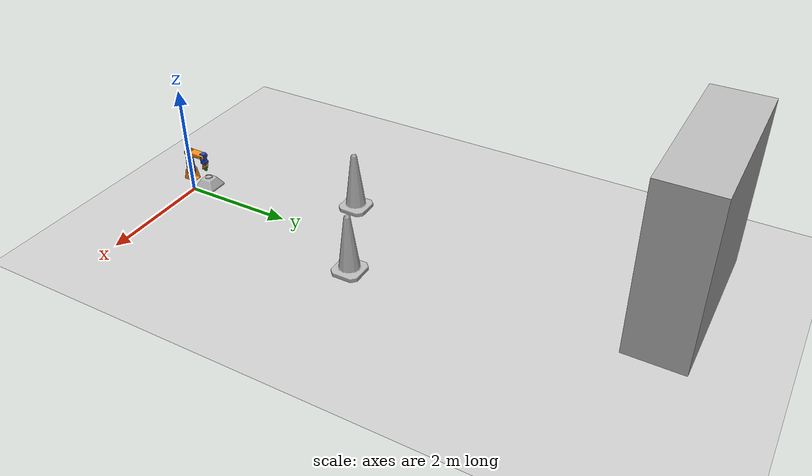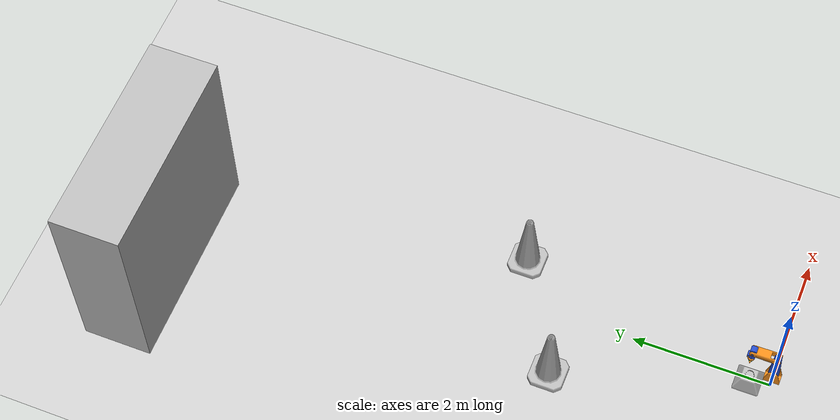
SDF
<sdf version="1.7">
 <world name="default">
  <light name="sun" type="directional">
   <pose>0 0 10 0 -0 0</pose>
   <diffuse>0.8 0.8 0.8 1</diffuse>
   <specular>0.2 0.2 0.2 1</specular>
   <attenuation>
    <range>1000</range>
    <constant>0.9</constant>
    <linear>0.01</linear>
    <quadratic>0.001</quadratic>
   </attenuation>
   <direction>-0.5 0.1 -0.9</direction>
   <spot><inner_angle>0</inner_angle><outer_angle>0</outer_angle><falloff>0</falloff></spot>
  </light>
  <model name="ground_plane">
   <static>1</static>
   <link name="link">
    <collision name="collision">
     <geometry><plane><normal>0 0 1</normal><size>100 100</size></plane></geometry>
     <surface>
      <contact><collide_bitmask>65535</collide_bitmask></contact>
      <friction><ode><mu>100</mu><mu2>50</mu2></ode></friction>
     </surface>
    </collision>
    <visual name="visual">
     <cast_shadows>0</cast_shadows>
     <geometry><plane><normal>0 0 1</normal><size>100 100</size></plane></geometry>
     <material>
      <script><uri>file://media/materials/scripts/gazebo.material</uri><name>Gazebo/Grey</name></script>
     </material>
    </visual>
   </link>
  </model>
  <gravity>0 0 -9.8</gravity>
  <magnetic_field>6e-06 2.3e-05 -4.2e-05</magnetic_field>
  <atmosphere type="adiabatic"/>
  <physics type="ode">
   <max_step_size>0.001</max_step_size>
   <real_time_factor>1</real_time_factor>
   <real_time_update_rate>1000</real_time_update_rate>
  </physics>
  <scene><ambient>0.4 0.4 0.4 1</ambient><background>0.7 0.7 0.7 1</background><shadows>1</shadows></scene>
  <spherical_coordinates>
   <surface_model>EARTH_WGS84</surface_model>
   <latitude_deg>0</latitude_deg>
   <longitude_deg>0</longitude_deg>
   <elevation>0</elevation>
   <heading_deg>0</heading_deg>
  </spherical_coordinates>
  <model name="robot_arm_urdf">
   <joint name="base_joint" type="fixed">
    <pose relative_to="__model__">0 0 0 0 0 -3.14119</pose>
    <parent>world</parent>
    <child>base_link</child>
   </joint>
   <link name="base_link">
    <pose relative_to="base_joint">0 0 0 0 -0 0</pose>
    <inertial>
     <pose>0 0 0.073876 0 -0 0</pose>
     <mass>17.147</mass>
     <inertia>
      <ixx>0.192</ixx>
      <ixy>-4.9423e-10</ixy>
      <ixz>1.2752e-17</ixz>
      <iyy>0.192</iyy>
      <iyz>2.6417e-18</iyz>
      <izz>0.29544</izz>
     </inertia>
    </inertial>
    <collision name="base_link_collision">
     <geometry>
      <mesh><scale>1 1 1</scale><uri>/home/ru3ll/moveit_sim/src/robot_arm_urdf/meshes/base_link.STL</uri></mesh>
     </geometry>
    </collision>
    <visual name="base_link_visual">
     <geometry>
      <mesh><scale>1 1 1</scale><uri>/home/ru3ll/moveit_sim/src/robot_arm_urdf/meshes/base_link.STL</uri></mesh>
     </geometry>
    </visual>
   </link>
   <joint name="joint_1" type="revolute">
    <pose relative_to="base_link">0 0 0.2 1.5708 -0 1.5708</pose>
    <parent>base_link</parent>
    <child>link_1</child>
    <axis>
     <xyz>0 1 0</xyz>
     <limit><lower>0</lower><upper>3.142</upper><effort>300</effort><velocity>3</velocity></limit>
     <dynamics><spring_reference>0</spring_reference><spring_stiffness>0</spring_stiffness></dynamics>
    </axis>
   </joint>
   <link name="link_1">
    <pose relative_to="joint_1">0 0 0 0 -0 0</pose>
    <inertial>
     <pose>-0 0.11047 -0 0 -0 0</pose>
     <mass>3.0905</mass>
     <inertia>
      <ixx>0.026302</ixx>
      <ixy>-2.5267e-15</ixy>
      <ixz>-1.4177e-12</ixz>
      <iyy>0.019632</iyy>
      <iyz>-7.4535e-12</iyz>
      <izz>0.025388</izz>
     </inertia>
    </inertial>
    <collision name="link_1_collision">
     <geometry>
      <mesh><scale>1 1 1</scale><uri>/home/ru3ll/moveit_sim/src/robot_arm_urdf/meshes/link_1.STL</uri></mesh>
     </geometry>
    </collision>
    <visual name="link_1_visual">
     <geometry>
      <mesh><scale>1 1 1</scale><uri>/home/ru3ll/moveit_sim/src/robot_arm_urdf/meshes/link_1.STL</uri></mesh>
     </geometry>
     <material>
      <script><name>Gazebo/Orange</name><uri>file://media/materials/scripts/gazebo.material</uri></script>
     </material>
    </visual>
    <self_collide>1</self_collide>
   </link>
   <joint name="joint_2" type="revolute">
    <pose relative_to="link_1">0 0.205 0 0 -0 0</pose>
    <parent>link_1</parent>
    <child>link_2</child>
    <axis>
     <xyz>0 0 1</xyz>
     <limit><lower>-1.57</lower><upper>1.57</upper><effort>200</effort><velocity>3</velocity></limit>
     <dynamics><spring_reference>0</spring_reference><spring_stiffness>0</spring_stiffness></dynamics>
    </axis>
   </joint>
   <link name="link_2">
    <pose relative_to="joint_2">0 0 0 0 -0 0</pose>
    <inertial>
     <pose>-0 0.16752 -0 0 -0 0</pose>
     <mass>5.5867</mass>
     <inertia>
      <ixx>0.12632</ixx>
      <ixy>8.4877e-17</ixy>
      <ixz>7.8685e-19</ixz>
      <iyy>0.011401</iyy>
      <iyz>1.4432e-16</iyz>
      <izz>0.12911</izz>
     </inertia>
    </inertial>
    <collision name="link_2_collision">
     <geometry>
      <mesh><scale>1 1 1</scale><uri>/home/ru3ll/moveit_sim/src/robot_arm_urdf/meshes/link_2.STL</uri></mesh>
     </geometry>
    </collision>
    <visual name="link_2_visual">
     <geometry>
      <mesh><scale>1 1 1</scale><uri>/home/ru3ll/moveit_sim/src/robot_arm_urdf/meshes/link_2.STL</uri></mesh>
     </geometry>
     <material>
      <script><name>Gazebo/Blue</name><uri>file://media/materials/scripts/gazebo.material</uri></script>
     </material>
    </visual>
    <self_collide>1</self_collide>
   </link>
   <joint name="joint_3" type="revolute">
    <pose relative_to="link_2">0 0.4 0 0 -0 0</pose>
    <parent>link_2</parent>
    <child>link_3</child>
    <axis>
     <xyz>0 0 1</xyz>
     <limit><lower>-3.142</lower><upper>0</upper><effort>200</effort><velocity>3</velocity></limit>
     <dynamics><spring_reference>0</spring_reference><spring_stiffness>0</spring_stiffness></dynamics>
    </axis>
   </joint>
   <link name="link_3">
    <pose relative_to="joint_3">0 0 0 0 -0 0</pose>
    <inertial>
     <pose>-0.17893 0 -0 0 -0 0</pose>
     <mass>2.8262</mass>
     <inertia>
      <ixx>0.0074041</ixx>
      <ixy>-1.7927e-17</ixy>
      <ixz>4.2672e-17</ixz>
      <iyy>0.028552</iyy>
      <iyz>-3.4736e-10</iyz>
      <izz>0.025128</izz>
     </inertia>
    </inertial>
    <collision name="link_3_collision">
     <geometry>
      <mesh><scale>1 1 1</scale><uri>/home/ru3ll/moveit_sim/src/robot_arm_urdf/meshes/link_3.STL</uri></mesh>
     </geometry>
    </collision>
    <visual name="link_3_visual">
     <geometry>
      <mesh><scale>1 1 1</scale><uri>/home/ru3ll/moveit_sim/src/robot_arm_urdf/meshes/link_3.STL</uri></mesh>
     </geometry>
     <material>
      <script><name>Gazebo/Orange</name><uri>file://media/materials/scripts/gazebo.material</uri></script>
     </material>
    </visual>
    <self_collide>1</self_collide>
   </link>
   <joint name="joint_4" type="revolute">
    <pose relative_to="link_3">-0.35 0 0 0 -0 1.5708</pose>
    <parent>link_3</parent>
    <child>link_4</child>
    <axis>
     <xyz>0 0 1</xyz>
     <limit><lower>-3.142</lower><upper>0</upper><effort>200</effort><velocity>3</velocity></limit>
     <dynamics><spring_reference>0</spring_reference><spring_stiffness>0</spring_stiffness></dynamics>
    </axis>
   </joint>
   <link name="link_4">
    <pose relative_to="joint_4">0 0 0 0 -0 0</pose>
    <inertial>
     <pose>-0.055614 0.003555 -1e-05 0 -0 0</pose>
     <mass>1.91761</mass>
     <inertia>
      <ixx>0.00272545</ixx>
      <ixy>0.000450745</ixy>
      <ixz>-1.20824e-06</ixz>
      <iyy>0.0101812</iyy>
      <iyz>1.13884e-06</iyz>
      <izz>0.0103673</izz>
     </inertia>
    </inertial>
    <collision name="link_4_collision">
     <geometry>
      <mesh><scale>1 1 1</scale><uri>/home/ru3ll/moveit_sim/src/robot_arm_urdf/meshes/link_4.STL</uri></mesh>
     </geometry>
    </collision>
    <collision name="link_4_fixed_joint_lump__cam_link_collision_1">
     <pose>-0.12319 0.051626 -3.3e-05 1.5708 -0 -3.14159</pose>
     <geometry>
      <mesh><scale>1 1 1</scale><uri>/home/ru3ll/moveit_sim/src/robot_arm_urdf/meshes/cam_link.STL</uri></mesh>
     </geometry>
    </collision>
    <visual name="link_4_visual">
     <geometry>
      <mesh><scale>1 1 1</scale><uri>/home/ru3ll/moveit_sim/src/robot_arm_urdf/meshes/link_4.STL</uri></mesh>
     </geometry>
     <material>
      <script><name>Gazebo/Blue</name><uri>file://media/materials/scripts/gazebo.material</uri></script>
     </material>
    </visual>
    <visual name="link_4_fixed_joint_lump__cam_link_visual_1">
     <pose>-0.12319 0.051626 -3.3e-05 -3.14159 -1.57079 3.14159</pose>
     <geometry>
      <mesh><scale>1 1 1</scale><uri>/home/ru3ll/moveit_sim/src/robot_arm_urdf/meshes/cam_link.STL</uri></mesh>
     </geometry>
     <material>
      <script><name>Gazebo/Black</name><uri>file://media/materials/scripts/gazebo.material</uri></script>
     </material>
    </visual>
    <self_collide>1</self_collide>
    <sensor name="camera" type="depth">
     <visualize>1</visualize>
     <update_rate>10</update_rate>
     <camera>
      <horizontal_fov>1.089</horizontal_fov>
      <image><width>640</width><height>480</height></image>
      <clip><near>0.5</near><far>8</far></clip>
     </camera>
     <plugin name="camera_plugin" filename="libgazebo_ros_openni_kinect.so">
      <baseline>0.2</baseline>
      <alwaysOn>1</alwaysOn>
      <updateRate>0.0</updateRate>
      <cameraName>camera_ir</cameraName>
      <imageTopicName>/camera/color/image_raw</imageTopicName>
      <cameraInfoTopicName>/camera/color/camera_info</cameraInfoTopicName>
      <depthImageTopicName>/camera/depth/image_raw</depthImageTopicName>
      <depthImageCameraInfoTopicName>/camera/depth/camera_info</depthImageCameraInfoTopicName>
      <pointCloudTopicName>/camera/depth/points</pointCloudTopicName>
      <frameName>cam_optical_link</frameName>
      <pointCloudCutoff>0.5</pointCloudCutoff>
      <pointCloudCutoffMax>3.0</pointCloudCutoffMax>
      <distortionK1>0</distortionK1>
      <distortionK2>0</distortionK2>
      <distortionK3>0</distortionK3>
      <distortionT1>0</distortionT1>
      <distortionT2>0</distortionT2>
      <CxPrime>0</CxPrime>
      <Cx>0</Cx>
      <Cy>0</Cy>
      <focalLength>0</focalLength>
      <hackBaseline>0</hackBaseline>
      <robotNamespace>/</robotNamespace>
     </plugin>
     <pose>-0.12319 0.051626 -3.3e-05 1.5708 -0 -3.14159</pose>
    </sensor>
   </link>
   <joint name="joint_5" type="revolute">
    <pose relative_to="link_4">-0.188 0 0 0 -0 0</pose>
    <parent>link_4</parent>
    <child>link_5</child>
    <axis>
     <xyz>1 0 0</xyz>
     <limit><lower>0</lower><upper>3.142</upper><effort>200</effort><velocity>3</velocity></limit>
     <dynamics><spring_reference>0</spring_reference><spring_stiffness>0</spring_stiffness></dynamics>
    </axis>
   </joint>
   <link name="link_5">
    <pose relative_to="joint_5">0 0 0 0 -0 0</pose>
    <inertial>
     <pose>-0.018544 0 -0 0 -0 0</pose>
     <mass>0.19053</mass>
     <inertia>
      <ixx>0.00030197</ixx>
      <ixy>1.6611e-20</ixy>
      <ixz>3.6309e-21</ixz>
      <iyy>0.00022817</iyy>
      <iyz>-1.9664e-11</iyz>
      <izz>0.00011843</izz>
     </inertia>
    </inertial>
    <collision name="link_5_collision">
     <geometry>
      <mesh><scale>1 1 1</scale><uri>/home/ru3ll/moveit_sim/src/robot_arm_urdf/meshes/link_5.STL</uri></mesh>
     </geometry>
    </collision>
    <visual name="link_5_visual">
     <geometry>
      <mesh><scale>1 1 1</scale><uri>/home/ru3ll/moveit_sim/src/robot_arm_urdf/meshes/link_5.STL</uri></mesh>
     </geometry>
     <material>
      <script><name>Gazebo/Orange</name><uri>file://media/materials/scripts/gazebo.material</uri></script>
     </material>
    </visual>
    <self_collide>1</self_collide>
   </link>
   <joint name="joint_6" type="prismatic">
    <pose relative_to="link_5">0.54 -0.4 0 0 -0 0</pose>
    <parent>link_5</parent>
    <child>link_6</child>
    <axis>
     <xyz>0 0 -1</xyz>
     <limit><lower>0</lower><upper>0.03</upper><effort>100</effort><velocity>3</velocity></limit>
     <dynamics><spring_reference>0</spring_reference><spring_stiffness>0</spring_stiffness></dynamics>
    </axis>
   </joint>
   <link name="link_6">
    <pose relative_to="joint_6">0 0 0 0 -0 0</pose>
    <inertial>
     <pose>-0.60237 0.4 -0.016013 0 -0 0</pose>
     <mass>0.11653</mass>
     <inertia>
      <ixx>3.9246e-05</ixx>
      <ixy>-9.4878e-20</ixy>
      <ixz>1.0258e-05</ixz>
      <iyy>7.1189e-05</iyy>
      <iyz>-3.4206e-20</iyz>
      <izz>8.4875e-05</izz>
     </inertia>
    </inertial>
    <collision name="link_6_collision">
     <geometry>
      <mesh><scale>1 1 1</scale><uri>/home/ru3ll/moveit_sim/src/robot_arm_urdf/meshes/link_6.STL</uri></mesh>
     </geometry>
    </collision>
    <visual name="link_6_visual">
     <geometry>
      <mesh><scale>1 1 1</scale><uri>/home/ru3ll/moveit_sim/src/robot_arm_urdf/meshes/link_6.STL</uri></mesh>
     </geometry>
     <material>
      <script><name>Gazebo/Green</name><uri>file://media/materials/scripts/gazebo.material</uri></script>
     </material>
    </visual>
    <self_collide>1</self_collide>
   </link>
   <joint name="joint_7" type="prismatic">
    <pose relative_to="link_5">0.54 0.4 0 -3.14159 0 0</pose>
    <parent>link_5</parent>
    <child>link_7</child>
    <axis>
     <xyz>0 0 1</xyz>
     <limit><lower>-0.03</lower><upper>0</upper><effort>100</effort><velocity>3</velocity></limit>
     <dynamics><spring_reference>0</spring_reference><spring_stiffness>0</spring_stiffness></dynamics>
    </axis>
   </joint>
   <link name="link_7">
    <pose relative_to="joint_7">0 0 0 0 -0 0</pose>
    <inertial>
     <pose>-0.60237 0.4 -0.016013 0 -0 0</pose>
     <mass>0.11653</mass>
     <inertia>
      <ixx>3.9246e-05</ixx>
      <ixy>-4.7946e-20</ixy>
      <ixz>1.0258e-05</ixz>
      <iyy>7.1189e-05</iyy>
      <iyz>-3.946e-20</iyz>
      <izz>8.4875e-05</izz>
     </inertia>
    </inertial>
    <collision name="link_7_collision">
     <geometry>
      <mesh><scale>1 1 1</scale><uri>/home/ru3ll/moveit_sim/src/robot_arm_urdf/meshes/link_7.STL</uri></mesh>
     </geometry>
    </collision>
    <visual name="link_7_visual">
     <geometry>
      <mesh><scale>1 1 1</scale><uri>/home/ru3ll/moveit_sim/src/robot_arm_urdf/meshes/link_7.STL</uri></mesh>
     </geometry>
     <material>
      <script><name>Gazebo/Green</name><uri>file://media/materials/scripts/gazebo.material</uri></script>
     </material>
    </visual>
    <self_collide>1</self_collide>
   </link>
   <static>0</static>
   <plugin name="control" filename="libgazebo_ros_control.so"><robotNamespace>/</robotNamespace></plugin>
   <pose>0 0 0 1e-06 -0 -1e-06</pose>
  </model>
  <model name="Construction Cone">
   <link name="link">
    <collision name="collision">
     <geometry>
      <mesh><scale>10 10 10</scale><uri>model://construction_cone/meshes/construction_cone.dae</uri></mesh>
     </geometry>
    </collision>
    <visual name="visual">
     <geometry>
      <mesh><scale>10 10 10</scale><uri>model://construction_cone/meshes/construction_cone.dae</uri></mesh>
     </geometry>
    </visual>
    <inertial>
     <inertia><ixx>1</ixx><ixy>0</ixy><ixz>0</ixz><iyy>1</iyy><iyz>0</iyz><izz>1</izz></inertia>
     <mass>1</mass>
    </inertial>
   </link>
   <pose>-0.939875 2.93235 -5e-06 -4e-06 1e-06 0</pose>
  </model>
  <model name="Construction Cone_0">
   <link name="link">
    <collision name="collision">
     <geometry>
      <mesh><scale>10 10 10</scale><uri>model://construction_cone/meshes/construction_cone.dae</uri></mesh>
     </geometry>
    </collision>
    <visual name="visual">
     <geometry>
      <mesh><scale>10 10 10</scale><uri>model://construction_cone/meshes/construction_cone.dae</uri></mesh>
     </geometry>
    </visual>
    <inertial>
     <inertia><ixx>1</ixx><ixy>0</ixy><ixz>0</ixz><iyy>1</iyy><iyz>0</iyz><izz>1</izz></inertia>
     <mass>1</mass>
    </inertial>
   </link>
   <pose>0.649923 3.81794 -0 0 -0 0</pose>
  </model>
  <model name="brick_box_3x1x3">
   <static>1</static>
   <link name="chassis">
    <pose>0 0 1.5 0 -0 0</pose>
    <collision name="collision"><geometry><box><size>3 1 3</size></box></geometry></collision>
    <visual name="visual">
     <geometry><mesh><uri>model://brick_box_3x1x3/meshes/simple_box.dae</uri><scale>3 1 3</scale></mesh></geometry>
     <material>
      <script>
       <uri>model://brick_box_3x1x3/materials/scripts</uri>
       <uri>model://brick_box_3x1x3/materials/textures</uri>
       <name>BrickBox/Diffuse</name>
      </script>
     </material>
    </visual>
   </link>
   <pose>-1.16426 8.73925 0 0 -0 0</pose>
  </model>
 </world>
</sdf>
